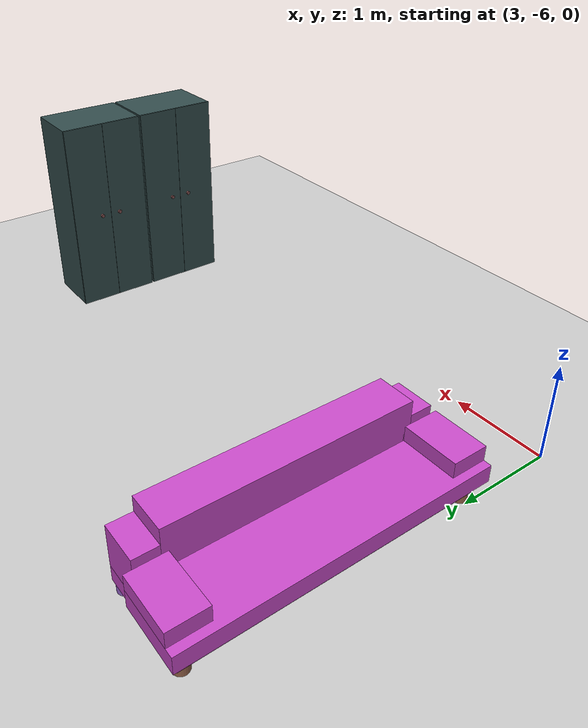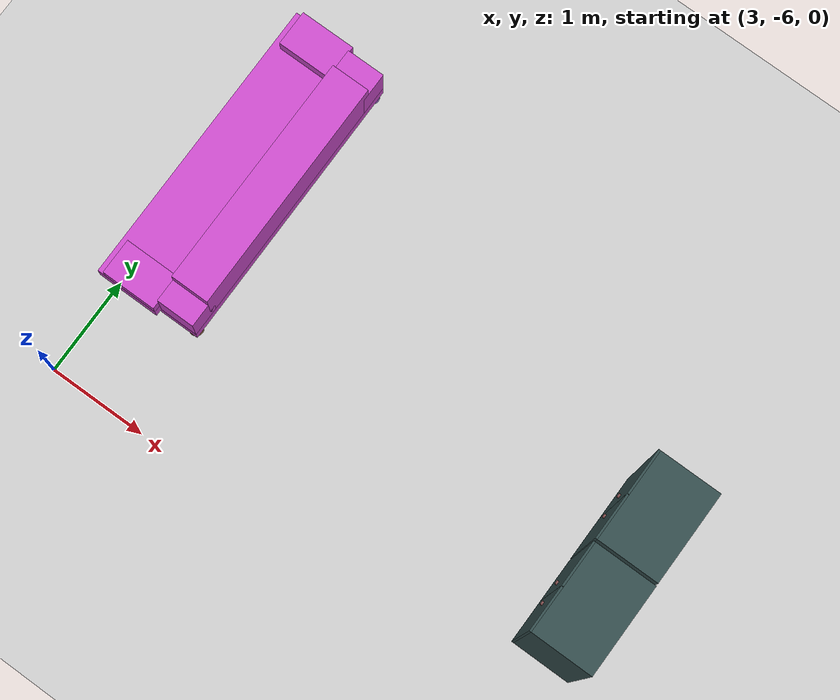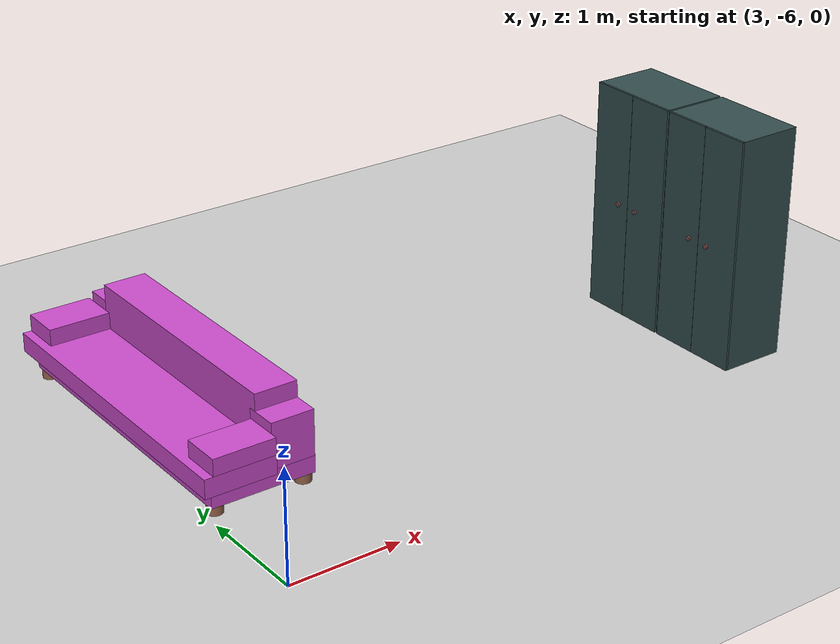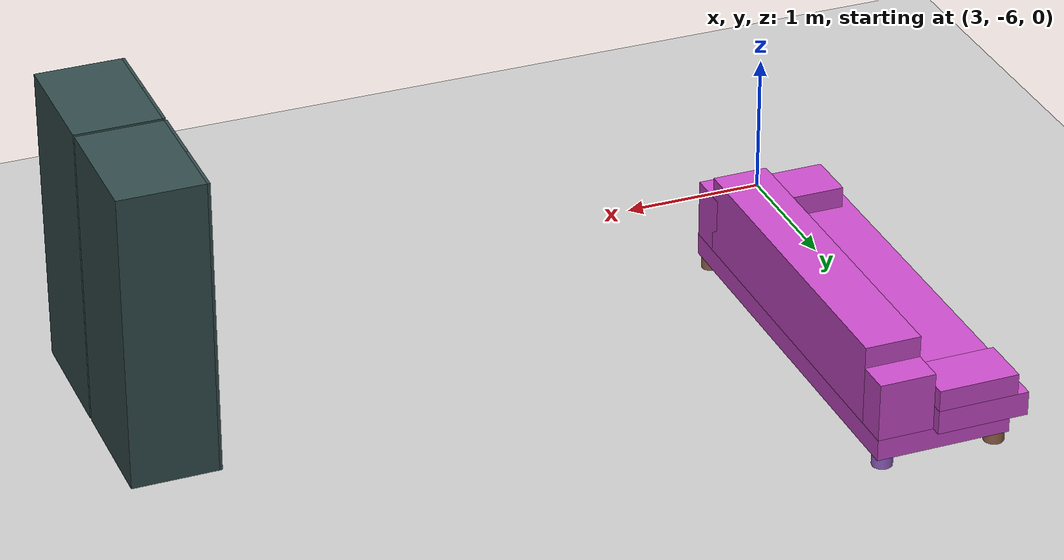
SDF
<sdf version="1.6">
 <world name="default">
  <model name="ground_plane">
   <static>1</static>
   <link name="link">
    <collision name="collision">
     <geometry><plane><normal>0 0 1</normal><size>100 100</size></plane></geometry>
     <surface><friction><ode><mu>100</mu><mu2>50</mu2></ode></friction></surface>
    </collision>
    <visual name="visual">
     <cast_shadows>0</cast_shadows>
     <geometry><plane><normal>0 0 1</normal><size>100 100</size></plane></geometry>
     <material>
      <script><uri>file://media/materials/scripts/gazebo.material</uri><name>Gazebo/Grey</name></script>
     </material>
    </visual>
   </link>
  </model>
  <model name="closet12_2">
   <link name="link_4">
    <pose>0.1575 -0.07957 1.24924 0 -0 0</pose>
    <visual name="visual">
     <geometry><box><size>0.59 0.882 2.1</size></box></geometry>
     <material>
      <lighting>1</lighting>
      <script><uri>file://media/materials/scripts/gazebo.material</uri><name>Gazebo/Grey</name></script>
      <ambient>0.2 0.3 0.3 1</ambient>
      <diffuse>0.7 0.7 0.7 1</diffuse>
      <specular>1 0.01 0.01 1</specular>
      <emissive>0 0 0 1</emissive>
      <shader type="vertex"><normal_map>__default__</normal_map></shader>
     </material>
    </visual>
    <collision name="collision">
     <geometry><box><size>0.59 0.882 2.1</size></box></geometry>
     <surface>
      <friction>
       <ode><mu>1</mu><mu2>1</mu2><fdir1>0 0 0</fdir1><slip1>0</slip1><slip2>0</slip2></ode>
       <torsional>
        <coefficient>1</coefficient>
        <patch_radius>0</patch_radius>
        <surface_radius>0</surface_radius>
        <use_patch_radius>1</use_patch_radius>
        <ode><slip>0</slip></ode>
       </torsional>
      </friction>
      <bounce><restitution_coefficient>0</restitution_coefficient><threshold>1e+06</threshold></bounce>
      <contact>
       <collide_without_contact>0</collide_without_contact>
       <collide_without_contact_bitmask>1</collide_without_contact_bitmask>
       <collide_bitmask>1</collide_bitmask>
       <ode>
        <soft_cfm>0</soft_cfm>
        <soft_erp>0.2</soft_erp>
        <kp>1e+13</kp>
        <kd>1</kd>
        <max_vel>0.01</max_vel>
        <min_depth>0</min_depth>
       </ode>
       <bullet>
        <split_impulse>1</split_impulse>
        <split_impulse_penetration_threshold>-0.01</split_impulse_penetration_threshold>
        <soft_cfm>0</soft_cfm>
        <soft_erp>0.2</soft_erp>
        <kp>1e+13</kp>
        <kd>1</kd>
       </bullet>
      </contact>
     </surface>
    </collision>
    <inertial>
     <inertia><ixx>1</ixx><ixy>0</ixy><ixz>0</ixz><iyy>1</iyy><iyz>0</iyz><izz>1</izz></inertia>
     <mass>1</mass>
    </inertial>
   </link>
   <link name="link_4_clone">
    <pose>-0.1475 0.14143 1.24924 0 -0 0</pose>
    <visual name="visual">
     <geometry><box><size>0.02 0.44 2.1</size></box></geometry>
     <material>
      <lighting>1</lighting>
      <script><uri>file://media/materials/scripts/gazebo.material</uri><name>Gazebo/Grey</name></script>
      <ambient>0.2 0.3 0.3 1</ambient>
      <diffuse>0.7 0.7 0.7 1</diffuse>
      <specular>1 0.01 0.01 1</specular>
      <emissive>0 0 0 1</emissive>
      <shader type="vertex"><normal_map>__default__</normal_map></shader>
     </material>
    </visual>
    <collision name="collision">
     <geometry><box><size>0.02 0.44 2.1</size></box></geometry>
     <surface>
      <friction>
       <ode><mu>1</mu><mu2>1</mu2><fdir1>0 0 0</fdir1><slip1>0</slip1><slip2>0</slip2></ode>
       <torsional>
        <coefficient>1</coefficient>
        <patch_radius>0</patch_radius>
        <surface_radius>0</surface_radius>
        <use_patch_radius>1</use_patch_radius>
        <ode><slip>0</slip></ode>
       </torsional>
      </friction>
      <bounce><restitution_coefficient>0</restitution_coefficient><threshold>1e+06</threshold></bounce>
      <contact>
       <collide_without_contact>0</collide_without_contact>
       <collide_without_contact_bitmask>1</collide_without_contact_bitmask>
       <collide_bitmask>1</collide_bitmask>
       <ode>
        <soft_cfm>0</soft_cfm>
        <soft_erp>0.2</soft_erp>
        <kp>1e+13</kp>
        <kd>1</kd>
        <max_vel>0.01</max_vel>
        <min_depth>0</min_depth>
       </ode>
       <bullet>
        <split_impulse>1</split_impulse>
        <split_impulse_penetration_threshold>-0.01</split_impulse_penetration_threshold>
        <soft_cfm>0</soft_cfm>
        <soft_erp>0.2</soft_erp>
        <kp>1e+13</kp>
        <kd>1</kd>
       </bullet>
      </contact>
     </surface>
    </collision>
    <inertial>
     <inertia><ixx>1</ixx><ixy>0</ixy><ixz>0</ixz><iyy>1</iyy><iyz>0</iyz><izz>1</izz></inertia>
     <mass>1</mass>
    </inertial>
   </link>
   <link name="link_4_clone_clone">
    <pose>-0.1475 -0.30057 1.24924 0 -0 0</pose>
    <visual name="visual">
     <geometry><box><size>0.02 0.44 2.1</size></box></geometry>
     <material>
      <lighting>1</lighting>
      <script><uri>file://media/materials/scripts/gazebo.material</uri><name>Gazebo/Grey</name></script>
      <ambient>0.2 0.3 0.3 1</ambient>
      <diffuse>0.7 0.7 0.7 1</diffuse>
      <specular>1 0.01 0.01 1</specular>
      <emissive>0 0 0 1</emissive>
      <shader type="vertex"><normal_map>__default__</normal_map></shader>
     </material>
    </visual>
    <collision name="collision">
     <geometry><box><size>0.02 0.44 2.1</size></box></geometry>
     <surface>
      <friction>
       <ode><mu>1</mu><mu2>1</mu2><fdir1>0 0 0</fdir1><slip1>0</slip1><slip2>0</slip2></ode>
       <torsional>
        <coefficient>1</coefficient>
        <patch_radius>0</patch_radius>
        <surface_radius>0</surface_radius>
        <use_patch_radius>1</use_patch_radius>
        <ode><slip>0</slip></ode>
       </torsional>
      </friction>
      <bounce><restitution_coefficient>0</restitution_coefficient><threshold>1e+06</threshold></bounce>
      <contact>
       <collide_without_contact>0</collide_without_contact>
       <collide_without_contact_bitmask>1</collide_without_contact_bitmask>
       <collide_bitmask>1</collide_bitmask>
       <ode>
        <soft_cfm>0</soft_cfm>
        <soft_erp>0.2</soft_erp>
        <kp>1e+13</kp>
        <kd>1</kd>
        <max_vel>0.01</max_vel>
        <min_depth>0</min_depth>
       </ode>
       <bullet>
        <split_impulse>1</split_impulse>
        <split_impulse_penetration_threshold>-0.01</split_impulse_penetration_threshold>
        <soft_cfm>0</soft_cfm>
        <soft_erp>0.2</soft_erp>
        <kp>1e+13</kp>
        <kd>1</kd>
       </bullet>
      </contact>
     </surface>
    </collision>
    <inertial>
     <inertia><ixx>1</ixx><ixy>0</ixy><ixz>0</ixz><iyy>1</iyy><iyz>0</iyz><izz>1</izz></inertia>
     <mass>1</mass>
    </inertial>
   </link>
   <link name="link_6">
    <pose>-0.167502 0.0279 1.24924 0 1.5707 0</pose>
    <visual name="visual">
     <geometry><cylinder><radius>0.02</radius><length>0.02</length></cylinder></geometry>
     <material>
      <lighting>1</lighting>
      <script><uri>file://media/materials/scripts/gazebo.material</uri><name>Gazebo/Grey</name></script>
      <ambient>0.5 0.3 0.3 1</ambient>
      <diffuse>0.7 0.7 0.7 1</diffuse>
      <specular>0.01 0.01 0.01 1</specular>
      <emissive>0 0 0 1</emissive>
      <shader type="vertex"><normal_map>__default__</normal_map></shader>
     </material>
    </visual>
    <collision name="collision">
     <geometry><cylinder><radius>0.02</radius><length>0.02</length></cylinder></geometry>
     <surface>
      <friction>
       <ode><mu>1</mu><mu2>1</mu2><fdir1>0 0 0</fdir1><slip1>0</slip1><slip2>0</slip2></ode>
       <torsional>
        <coefficient>1</coefficient>
        <patch_radius>0</patch_radius>
        <surface_radius>0</surface_radius>
        <use_patch_radius>1</use_patch_radius>
        <ode><slip>0</slip></ode>
       </torsional>
      </friction>
      <bounce><restitution_coefficient>0</restitution_coefficient><threshold>1e+06</threshold></bounce>
      <contact>
       <collide_without_contact>0</collide_without_contact>
       <collide_without_contact_bitmask>1</collide_without_contact_bitmask>
       <collide_bitmask>1</collide_bitmask>
       <ode>
        <soft_cfm>0</soft_cfm>
        <soft_erp>0.2</soft_erp>
        <kp>1e+13</kp>
        <kd>1</kd>
        <max_vel>0.01</max_vel>
        <min_depth>0</min_depth>
       </ode>
       <bullet>
        <split_impulse>1</split_impulse>
        <split_impulse_penetration_threshold>-0.01</split_impulse_penetration_threshold>
        <soft_cfm>0</soft_cfm>
        <soft_erp>0.2</soft_erp>
        <kp>1e+13</kp>
        <kd>1</kd>
       </bullet>
      </contact>
     </surface>
    </collision>
    <inertial>
     <inertia><ixx>1</ixx><ixy>0</ixy><ixz>0</ixz><iyy>1</iyy><iyz>0</iyz><izz>1</izz></inertia>
     <mass>1</mass>
    </inertial>
   </link>
   <link name="link_6_clone">
    <pose>-0.167502 -0.184796 1.24924 0 1.5707 0</pose>
    <visual name="visual">
     <geometry><cylinder><radius>0.02</radius><length>0.02</length></cylinder></geometry>
     <material>
      <lighting>1</lighting>
      <script><uri>file://media/materials/scripts/gazebo.material</uri><name>Gazebo/Grey</name></script>
      <ambient>0.5 0.3 0.3 1</ambient>
      <diffuse>0.7 0.7 0.7 1</diffuse>
      <specular>0.01 0.01 0.01 1</specular>
      <emissive>0 0 0 1</emissive>
      <shader type="vertex"><normal_map>__default__</normal_map></shader>
     </material>
    </visual>
    <collision name="collision">
     <geometry><cylinder><radius>0.02</radius><length>0.02</length></cylinder></geometry>
     <surface>
      <friction>
       <ode><mu>1</mu><mu2>1</mu2><fdir1>0 0 0</fdir1><slip1>0</slip1><slip2>0</slip2></ode>
       <torsional>
        <coefficient>1</coefficient>
        <patch_radius>0</patch_radius>
        <surface_radius>0</surface_radius>
        <use_patch_radius>1</use_patch_radius>
        <ode><slip>0</slip></ode>
       </torsional>
      </friction>
      <bounce><restitution_coefficient>0</restitution_coefficient><threshold>1e+06</threshold></bounce>
      <contact>
       <collide_without_contact>0</collide_without_contact>
       <collide_without_contact_bitmask>1</collide_without_contact_bitmask>
       <collide_bitmask>1</collide_bitmask>
       <ode>
        <soft_cfm>0</soft_cfm>
        <soft_erp>0.2</soft_erp>
        <kp>1e+13</kp>
        <kd>1</kd>
        <max_vel>0.01</max_vel>
        <min_depth>0</min_depth>
       </ode>
       <bullet>
        <split_impulse>1</split_impulse>
        <split_impulse_penetration_threshold>-0.01</split_impulse_penetration_threshold>
        <soft_cfm>0</soft_cfm>
        <soft_erp>0.2</soft_erp>
        <kp>1e+13</kp>
        <kd>1</kd>
       </bullet>
      </contact>
     </surface>
    </collision>
    <inertial>
     <inertia><ixx>1</ixx><ixy>0</ixy><ixz>0</ixz><iyy>1</iyy><iyz>0</iyz><izz>1</izz></inertia>
     <mass>1</mass>
    </inertial>
   </link>
   <joint name="link_4_JOINT_0" type="fixed">
    <parent>link_4</parent>
    <child>link_4_clone_clone</child>
    <physics>
     <ode><limit><cfm>0</cfm><erp>0.2</erp></limit><suspension><cfm>0</cfm><erp>0.2</erp></suspension></ode>
    </physics>
   </joint>
   <joint name="link_4_JOINT_1" type="fixed">
    <parent>link_4</parent>
    <child>link_4_clone</child>
    <physics>
     <ode><limit><cfm>0</cfm><erp>0.2</erp></limit><suspension><cfm>0</cfm><erp>0.2</erp></suspension></ode>
    </physics>
   </joint>
   <joint name="link_4_clone_JOINT_2" type="fixed">
    <parent>link_4_clone</parent>
    <child>link_6</child>
    <physics>
     <ode><limit><cfm>0</cfm><erp>0.2</erp></limit><suspension><cfm>0</cfm><erp>0.2</erp></suspension></ode>
    </physics>
   </joint>
   <joint name="link_4_clone_clone_JOINT_3" type="fixed">
    <parent>link_4_clone_clone</parent>
    <child>link_6_clone</child>
    <physics>
     <ode><limit><cfm>0</cfm><erp>0.2</erp></limit><suspension><cfm>0</cfm><erp>0.2</erp></suspension></ode>
    </physics>
   </joint>
   <joint name="link_4_clone_clone_JOINT_4" type="fixed">
    <parent>link_4_clone_clone</parent>
    <child>link_6_clone</child>
    <physics>
     <ode><limit><cfm>0</cfm><erp>0.2</erp></limit><suspension><cfm>0</cfm><erp>0.2</erp></suspension></ode>
    </physics>
   </joint>
   <static>0</static>
   <pose>7.92782 -5.01709 -0.119242 -0 -1.3e-05 -0.000121</pose>
  </model>
  <model name="closet12_2_clone">
   <link name="link_4">
    <pose>0.1575 -0.07957 1.24924 0 -0 0</pose>
    <visual name="visual">
     <geometry><box><size>0.59 0.882 2.1</size></box></geometry>
     <material>
      <lighting>1</lighting>
      <script><uri>file://media/materials/scripts/gazebo.material</uri><name>Gazebo/Grey</name></script>
      <ambient>0.2 0.3 0.3 1</ambient>
      <diffuse>0.7 0.7 0.7 1</diffuse>
      <specular>1 0.01 0.01 1</specular>
      <emissive>0 0 0 1</emissive>
      <shader type="vertex"><normal_map>__default__</normal_map></shader>
     </material>
    </visual>
    <collision name="collision">
     <geometry><box><size>0.59 0.882 2.1</size></box></geometry>
     <surface>
      <friction>
       <ode><mu>1</mu><mu2>1</mu2><fdir1>0 0 0</fdir1><slip1>0</slip1><slip2>0</slip2></ode>
       <torsional>
        <coefficient>1</coefficient>
        <patch_radius>0</patch_radius>
        <surface_radius>0</surface_radius>
        <use_patch_radius>1</use_patch_radius>
        <ode><slip>0</slip></ode>
       </torsional>
      </friction>
      <bounce><restitution_coefficient>0</restitution_coefficient><threshold>1e+06</threshold></bounce>
      <contact>
       <collide_without_contact>0</collide_without_contact>
       <collide_without_contact_bitmask>1</collide_without_contact_bitmask>
       <collide_bitmask>1</collide_bitmask>
       <ode>
        <soft_cfm>0</soft_cfm>
        <soft_erp>0.2</soft_erp>
        <kp>1e+13</kp>
        <kd>1</kd>
        <max_vel>0.01</max_vel>
        <min_depth>0</min_depth>
       </ode>
       <bullet>
        <split_impulse>1</split_impulse>
        <split_impulse_penetration_threshold>-0.01</split_impulse_penetration_threshold>
        <soft_cfm>0</soft_cfm>
        <soft_erp>0.2</soft_erp>
        <kp>1e+13</kp>
        <kd>1</kd>
       </bullet>
      </contact>
     </surface>
    </collision>
    <inertial>
     <inertia><ixx>1</ixx><ixy>0</ixy><ixz>0</ixz><iyy>1</iyy><iyz>0</iyz><izz>1</izz></inertia>
     <mass>1</mass>
    </inertial>
   </link>
   <link name="link_4_clone">
    <pose>-0.1475 0.14143 1.24924 0 -0 0</pose>
    <visual name="visual">
     <geometry><box><size>0.02 0.44 2.1</size></box></geometry>
     <material>
      <lighting>1</lighting>
      <script><uri>file://media/materials/scripts/gazebo.material</uri><name>Gazebo/Grey</name></script>
      <ambient>0.2 0.3 0.3 1</ambient>
      <diffuse>0.7 0.7 0.7 1</diffuse>
      <specular>1 0.01 0.01 1</specular>
      <emissive>0 0 0 1</emissive>
      <shader type="vertex"><normal_map>__default__</normal_map></shader>
     </material>
    </visual>
    <collision name="collision">
     <geometry><box><size>0.02 0.44 2.1</size></box></geometry>
     <surface>
      <friction>
       <ode><mu>1</mu><mu2>1</mu2><fdir1>0 0 0</fdir1><slip1>0</slip1><slip2>0</slip2></ode>
       <torsional>
        <coefficient>1</coefficient>
        <patch_radius>0</patch_radius>
        <surface_radius>0</surface_radius>
        <use_patch_radius>1</use_patch_radius>
        <ode><slip>0</slip></ode>
       </torsional>
      </friction>
      <bounce><restitution_coefficient>0</restitution_coefficient><threshold>1e+06</threshold></bounce>
      <contact>
       <collide_without_contact>0</collide_without_contact>
       <collide_without_contact_bitmask>1</collide_without_contact_bitmask>
       <collide_bitmask>1</collide_bitmask>
       <ode>
        <soft_cfm>0</soft_cfm>
        <soft_erp>0.2</soft_erp>
        <kp>1e+13</kp>
        <kd>1</kd>
        <max_vel>0.01</max_vel>
        <min_depth>0</min_depth>
       </ode>
       <bullet>
        <split_impulse>1</split_impulse>
        <split_impulse_penetration_threshold>-0.01</split_impulse_penetration_threshold>
        <soft_cfm>0</soft_cfm>
        <soft_erp>0.2</soft_erp>
        <kp>1e+13</kp>
        <kd>1</kd>
       </bullet>
      </contact>
     </surface>
    </collision>
    <inertial>
     <inertia><ixx>1</ixx><ixy>0</ixy><ixz>0</ixz><iyy>1</iyy><iyz>0</iyz><izz>1</izz></inertia>
     <mass>1</mass>
    </inertial>
   </link>
   <link name="link_4_clone_clone">
    <pose>-0.1475 -0.30057 1.24924 0 -0 0</pose>
    <visual name="visual">
     <geometry><box><size>0.02 0.44 2.1</size></box></geometry>
     <material>
      <lighting>1</lighting>
      <script><uri>file://media/materials/scripts/gazebo.material</uri><name>Gazebo/Grey</name></script>
      <ambient>0.2 0.3 0.3 1</ambient>
      <diffuse>0.7 0.7 0.7 1</diffuse>
      <specular>1 0.01 0.01 1</specular>
      <emissive>0 0 0 1</emissive>
      <shader type="vertex"><normal_map>__default__</normal_map></shader>
     </material>
    </visual>
    <collision name="collision">
     <geometry><box><size>0.02 0.44 2.1</size></box></geometry>
     <surface>
      <friction>
       <ode><mu>1</mu><mu2>1</mu2><fdir1>0 0 0</fdir1><slip1>0</slip1><slip2>0</slip2></ode>
       <torsional>
        <coefficient>1</coefficient>
        <patch_radius>0</patch_radius>
        <surface_radius>0</surface_radius>
        <use_patch_radius>1</use_patch_radius>
        <ode><slip>0</slip></ode>
       </torsional>
      </friction>
      <bounce><restitution_coefficient>0</restitution_coefficient><threshold>1e+06</threshold></bounce>
      <contact>
       <collide_without_contact>0</collide_without_contact>
       <collide_without_contact_bitmask>1</collide_without_contact_bitmask>
       <collide_bitmask>1</collide_bitmask>
       <ode>
        <soft_cfm>0</soft_cfm>
        <soft_erp>0.2</soft_erp>
        <kp>1e+13</kp>
        <kd>1</kd>
        <max_vel>0.01</max_vel>
        <min_depth>0</min_depth>
       </ode>
       <bullet>
        <split_impulse>1</split_impulse>
        <split_impulse_penetration_threshold>-0.01</split_impulse_penetration_threshold>
        <soft_cfm>0</soft_cfm>
        <soft_erp>0.2</soft_erp>
        <kp>1e+13</kp>
        <kd>1</kd>
       </bullet>
      </contact>
     </surface>
    </collision>
    <inertial>
     <inertia><ixx>1</ixx><ixy>0</ixy><ixz>0</ixz><iyy>1</iyy><iyz>0</iyz><izz>1</izz></inertia>
     <mass>1</mass>
    </inertial>
   </link>
   <link name="link_6">
    <pose>-0.167502 0.0279 1.24924 0 1.5707 0</pose>
    <visual name="visual">
     <geometry><cylinder><radius>0.02</radius><length>0.02</length></cylinder></geometry>
     <material>
      <lighting>1</lighting>
      <script><uri>file://media/materials/scripts/gazebo.material</uri><name>Gazebo/Grey</name></script>
      <ambient>0.5 0.3 0.3 1</ambient>
      <diffuse>0.7 0.7 0.7 1</diffuse>
      <specular>0.01 0.01 0.01 1</specular>
      <emissive>0 0 0 1</emissive>
      <shader type="vertex"><normal_map>__default__</normal_map></shader>
     </material>
    </visual>
    <collision name="collision">
     <geometry><cylinder><radius>0.02</radius><length>0.02</length></cylinder></geometry>
     <surface>
      <friction>
       <ode><mu>1</mu><mu2>1</mu2><fdir1>0 0 0</fdir1><slip1>0</slip1><slip2>0</slip2></ode>
       <torsional>
        <coefficient>1</coefficient>
        <patch_radius>0</patch_radius>
        <surface_radius>0</surface_radius>
        <use_patch_radius>1</use_patch_radius>
        <ode><slip>0</slip></ode>
       </torsional>
      </friction>
      <bounce><restitution_coefficient>0</restitution_coefficient><threshold>1e+06</threshold></bounce>
      <contact>
       <collide_without_contact>0</collide_without_contact>
       <collide_without_contact_bitmask>1</collide_without_contact_bitmask>
       <collide_bitmask>1</collide_bitmask>
       <ode>
        <soft_cfm>0</soft_cfm>
        <soft_erp>0.2</soft_erp>
        <kp>1e+13</kp>
        <kd>1</kd>
        <max_vel>0.01</max_vel>
        <min_depth>0</min_depth>
       </ode>
       <bullet>
        <split_impulse>1</split_impulse>
        <split_impulse_penetration_threshold>-0.01</split_impulse_penetration_threshold>
        <soft_cfm>0</soft_cfm>
        <soft_erp>0.2</soft_erp>
        <kp>1e+13</kp>
        <kd>1</kd>
       </bullet>
      </contact>
     </surface>
    </collision>
    <inertial>
     <inertia><ixx>1</ixx><ixy>0</ixy><ixz>0</ixz><iyy>1</iyy><iyz>0</iyz><izz>1</izz></inertia>
     <mass>1</mass>
    </inertial>
   </link>
   <link name="link_6_clone">
    <pose>-0.167502 -0.184796 1.24924 0 1.5707 0</pose>
    <visual name="visual">
     <geometry><cylinder><radius>0.02</radius><length>0.02</length></cylinder></geometry>
     <material>
      <lighting>1</lighting>
      <script><uri>file://media/materials/scripts/gazebo.material</uri><name>Gazebo/Grey</name></script>
      <ambient>0.5 0.3 0.3 1</ambient>
      <diffuse>0.7 0.7 0.7 1</diffuse>
      <specular>0.01 0.01 0.01 1</specular>
      <emissive>0 0 0 1</emissive>
      <shader type="vertex"><normal_map>__default__</normal_map></shader>
     </material>
    </visual>
    <collision name="collision">
     <geometry><cylinder><radius>0.02</radius><length>0.02</length></cylinder></geometry>
     <surface>
      <friction>
       <ode><mu>1</mu><mu2>1</mu2><fdir1>0 0 0</fdir1><slip1>0</slip1><slip2>0</slip2></ode>
       <torsional>
        <coefficient>1</coefficient>
        <patch_radius>0</patch_radius>
        <surface_radius>0</surface_radius>
        <use_patch_radius>1</use_patch_radius>
        <ode><slip>0</slip></ode>
       </torsional>
      </friction>
      <bounce><restitution_coefficient>0</restitution_coefficient><threshold>1e+06</threshold></bounce>
      <contact>
       <collide_without_contact>0</collide_without_contact>
       <collide_without_contact_bitmask>1</collide_without_contact_bitmask>
       <collide_bitmask>1</collide_bitmask>
       <ode>
        <soft_cfm>0</soft_cfm>
        <soft_erp>0.2</soft_erp>
        <kp>1e+13</kp>
        <kd>1</kd>
        <max_vel>0.01</max_vel>
        <min_depth>0</min_depth>
       </ode>
       <bullet>
        <split_impulse>1</split_impulse>
        <split_impulse_penetration_threshold>-0.01</split_impulse_penetration_threshold>
        <soft_cfm>0</soft_cfm>
        <soft_erp>0.2</soft_erp>
        <kp>1e+13</kp>
        <kd>1</kd>
       </bullet>
      </contact>
     </surface>
    </collision>
    <inertial>
     <inertia><ixx>1</ixx><ixy>0</ixy><ixz>0</ixz><iyy>1</iyy><iyz>0</iyz><izz>1</izz></inertia>
     <mass>1</mass>
    </inertial>
   </link>
   <joint name="link_4_JOINT_0" type="fixed">
    <parent>link_4</parent>
    <child>link_4_clone_clone</child>
    <physics>
     <ode><limit><cfm>0</cfm><erp>0.2</erp></limit><suspension><cfm>0</cfm><erp>0.2</erp></suspension></ode>
    </physics>
   </joint>
   <joint name="link_4_JOINT_1" type="fixed">
    <parent>link_4</parent>
    <child>link_4_clone</child>
    <physics>
     <ode><limit><cfm>0</cfm><erp>0.2</erp></limit><suspension><cfm>0</cfm><erp>0.2</erp></suspension></ode>
    </physics>
   </joint>
   <joint name="link_4_clone_JOINT_2" type="fixed">
    <parent>link_4_clone</parent>
    <child>link_6</child>
    <physics>
     <ode><limit><cfm>0</cfm><erp>0.2</erp></limit><suspension><cfm>0</cfm><erp>0.2</erp></suspension></ode>
    </physics>
   </joint>
   <joint name="link_4_clone_clone_JOINT_3" type="fixed">
    <parent>link_4_clone_clone</parent>
    <child>link_6_clone</child>
    <physics>
     <ode><limit><cfm>0</cfm><erp>0.2</erp></limit><suspension><cfm>0</cfm><erp>0.2</erp></suspension></ode>
    </physics>
   </joint>
   <joint name="link_4_clone_clone_JOINT_4" type="fixed">
    <parent>link_4_clone_clone</parent>
    <child>link_6_clone</child>
    <physics>
     <ode><limit><cfm>0</cfm><erp>0.2</erp></limit><suspension><cfm>0</cfm><erp>0.2</erp></suspension></ode>
    </physics>
   </joint>
   <static>0</static>
   <pose>7.92654 -4.11052 -0.11924 1e-06 -0 -3.4e-05</pose>
  </model>
  <model name="sofa">
   <link name="link_1">
    <pose>-0 -0.016818 -0.114091 0 -0 0</pose>
    <visual name="visual">
     <geometry><box><size>2.84 0.94 0.15</size></box></geometry>
     <material>
      <lighting>1</lighting>
      <script><uri>file://media/materials/scripts/gazebo.material</uri><name>Gazebo/Grey</name></script>
      <ambient>0.8 0.3 0.8 1</ambient>
      <diffuse>0.7 0.7 0.7 1</diffuse>
      <specular>0.01 0.01 0.01 1</specular>
      <emissive>0 0 0 1</emissive>
      <shader type="vertex"><normal_map>__default__</normal_map></shader>
     </material>
    </visual>
    <collision name="collision">
     <geometry><box><size>2.84 0.94 0.15</size></box></geometry>
     <surface>
      <friction>
       <ode><mu>1</mu><mu2>1</mu2><fdir1>0 0 0</fdir1><slip1>0</slip1><slip2>0</slip2></ode>
       <torsional>
        <coefficient>1</coefficient>
        <patch_radius>0</patch_radius>
        <surface_radius>0</surface_radius>
        <use_patch_radius>1</use_patch_radius>
        <ode><slip>0</slip></ode>
       </torsional>
      </friction>
      <bounce><restitution_coefficient>0</restitution_coefficient><threshold>1e+06</threshold></bounce>
      <contact>
       <collide_without_contact>0</collide_without_contact>
       <collide_without_contact_bitmask>1</collide_without_contact_bitmask>
       <collide_bitmask>1</collide_bitmask>
       <ode>
        <soft_cfm>0</soft_cfm>
        <soft_erp>0.2</soft_erp>
        <kp>1e+13</kp>
        <kd>1</kd>
        <max_vel>0.01</max_vel>
        <min_depth>0</min_depth>
       </ode>
       <bullet>
        <split_impulse>1</split_impulse>
        <split_impulse_penetration_threshold>-0.01</split_impulse_penetration_threshold>
        <soft_cfm>0</soft_cfm>
        <soft_erp>0.2</soft_erp>
        <kp>1e+13</kp>
        <kd>1</kd>
       </bullet>
      </contact>
     </surface>
    </collision>
    <inertial>
     <inertia><ixx>1</ixx><ixy>0</ixy><ixz>0</ixz><iyy>1</iyy><iyz>0</iyz><izz>1</izz></inertia>
     <mass>1</mass>
    </inertial>
   </link>
   <link name="link_1_clone">
    <pose>-0 -0.256819 0.045909 0 -0 0</pose>
    <visual name="visual">
     <geometry><box><size>2.98 0.64 0.17</size></box></geometry>
     <material>
      <lighting>1</lighting>
      <script><uri>file://media/materials/scripts/gazebo.material</uri><name>Gazebo/Grey</name></script>
      <ambient>0.8 0.3 0.8 1</ambient>
      <diffuse>0.7 0.7 0.7 1</diffuse>
      <specular>0.01 0.01 0.01 1</specular>
      <emissive>0 0 0 1</emissive>
      <shader type="vertex"><normal_map>__default__</normal_map></shader>
     </material>
    </visual>
    <collision name="collision">
     <geometry><box><size>2.98 0.64 0.17</size></box></geometry>
     <surface>
      <friction>
       <ode><mu>1</mu><mu2>1</mu2><fdir1>0 0 0</fdir1><slip1>0</slip1><slip2>0</slip2></ode>
       <torsional>
        <coefficient>1</coefficient>
        <patch_radius>0</patch_radius>
        <surface_radius>0</surface_radius>
        <use_patch_radius>1</use_patch_radius>
        <ode><slip>0</slip></ode>
       </torsional>
      </friction>
      <bounce><restitution_coefficient>0</restitution_coefficient><threshold>1e+06</threshold></bounce>
      <contact>
       <collide_without_contact>0</collide_without_contact>
       <collide_without_contact_bitmask>1</collide_without_contact_bitmask>
       <collide_bitmask>1</collide_bitmask>
       <ode>
        <soft_cfm>0</soft_cfm>
        <soft_erp>0.2</soft_erp>
        <kp>1e+13</kp>
        <kd>1</kd>
        <max_vel>0.01</max_vel>
        <min_depth>0</min_depth>
       </ode>
       <bullet>
        <split_impulse>1</split_impulse>
        <split_impulse_penetration_threshold>-0.01</split_impulse_penetration_threshold>
        <soft_cfm>0</soft_cfm>
        <soft_erp>0.2</soft_erp>
        <kp>1e+13</kp>
        <kd>1</kd>
       </bullet>
      </contact>
     </surface>
    </collision>
    <inertial>
     <inertia><ixx>1</ixx><ixy>0</ixy><ixz>0</ixz><iyy>1</iyy><iyz>0</iyz><izz>1</izz></inertia>
     <mass>1</mass>
    </inertial>
   </link>
   <link name="link_1_clone_clone">
    <pose>1.27 0.258181 0.165909 0 -0 0</pose>
    <visual name="visual">
     <geometry><box><size>0.3 0.39 0.41</size></box></geometry>
     <material>
      <lighting>1</lighting>
      <script><uri>file://media/materials/scripts/gazebo.material</uri><name>Gazebo/Grey</name></script>
      <ambient>0.8 0.3 0.8 1</ambient>
      <diffuse>0.7 0.7 0.7 1</diffuse>
      <specular>0.01 0.01 0.01 1</specular>
      <emissive>0 0 0 1</emissive>
      <shader type="vertex"><normal_map>__default__</normal_map></shader>
     </material>
    </visual>
    <collision name="collision">
     <geometry><box><size>0.3 0.39 0.41</size></box></geometry>
     <surface>
      <friction>
       <ode><mu>1</mu><mu2>1</mu2><fdir1>0 0 0</fdir1><slip1>0</slip1><slip2>0</slip2></ode>
       <torsional>
        <coefficient>1</coefficient>
        <patch_radius>0</patch_radius>
        <surface_radius>0</surface_radius>
        <use_patch_radius>1</use_patch_radius>
        <ode><slip>0</slip></ode>
       </torsional>
      </friction>
      <bounce><restitution_coefficient>0</restitution_coefficient><threshold>1e+06</threshold></bounce>
      <contact>
       <collide_without_contact>0</collide_without_contact>
       <collide_without_contact_bitmask>1</collide_without_contact_bitmask>
       <collide_bitmask>1</collide_bitmask>
       <ode>
        <soft_cfm>0</soft_cfm>
        <soft_erp>0.2</soft_erp>
        <kp>1e+13</kp>
        <kd>1</kd>
        <max_vel>0.01</max_vel>
        <min_depth>0</min_depth>
       </ode>
       <bullet>
        <split_impulse>1</split_impulse>
        <split_impulse_penetration_threshold>-0.01</split_impulse_penetration_threshold>
        <soft_cfm>0</soft_cfm>
        <soft_erp>0.2</soft_erp>
        <kp>1e+13</kp>
        <kd>1</kd>
       </bullet>
      </contact>
     </surface>
    </collision>
    <inertial>
     <inertia><ixx>1</ixx><ixy>0</ixy><ixz>0</ixz><iyy>1</iyy><iyz>0</iyz><izz>1</izz></inertia>
     <mass>1</mass>
    </inertial>
   </link>
   <link name="link_1_clone_clone_0">
    <pose>-0 0.258181 0.240909 0 -0 0</pose>
    <visual name="visual">
     <geometry><box><size>2.38 0.39 0.56</size></box></geometry>
     <material>
      <lighting>1</lighting>
      <script><uri>file://media/materials/scripts/gazebo.material</uri><name>Gazebo/Grey</name></script>
      <ambient>0.8 0.3 0.8 1</ambient>
      <diffuse>0.7 0.7 0.7 1</diffuse>
      <specular>0.01 0.01 0.01 1</specular>
      <emissive>0 0 0 1</emissive>
      <shader type="vertex"><normal_map>__default__</normal_map></shader>
     </material>
    </visual>
    <collision name="collision">
     <geometry><box><size>2.38 0.39 0.56</size></box></geometry>
     <surface>
      <friction>
       <ode><mu>1</mu><mu2>1</mu2><fdir1>0 0 0</fdir1><slip1>0</slip1><slip2>0</slip2></ode>
       <torsional>
        <coefficient>1</coefficient>
        <patch_radius>0</patch_radius>
        <surface_radius>0</surface_radius>
        <use_patch_radius>1</use_patch_radius>
        <ode><slip>0</slip></ode>
       </torsional>
      </friction>
      <bounce><restitution_coefficient>0</restitution_coefficient><threshold>1e+06</threshold></bounce>
      <contact>
       <collide_without_contact>0</collide_without_contact>
       <collide_without_contact_bitmask>1</collide_without_contact_bitmask>
       <collide_bitmask>1</collide_bitmask>
       <ode>
        <soft_cfm>0</soft_cfm>
        <soft_erp>0.2</soft_erp>
        <kp>1e+13</kp>
        <kd>1</kd>
        <max_vel>0.01</max_vel>
        <min_depth>0</min_depth>
       </ode>
       <bullet>
        <split_impulse>1</split_impulse>
        <split_impulse_penetration_threshold>-0.01</split_impulse_penetration_threshold>
        <soft_cfm>0</soft_cfm>
        <soft_erp>0.2</soft_erp>
        <kp>1e+13</kp>
        <kd>1</kd>
       </bullet>
      </contact>
     </surface>
    </collision>
    <inertial>
     <inertia><ixx>1</ixx><ixy>0</ixy><ixz>0</ixz><iyy>1</iyy><iyz>0</iyz><izz>1</izz></inertia>
     <mass>1</mass>
    </inertial>
   </link>
   <link name="link_1_clone_clone_clone">
    <pose>-1.27 0.258181 0.165909 0 -0 0</pose>
    <visual name="visual">
     <geometry><box><size>0.3 0.39 0.41</size></box></geometry>
     <material>
      <lighting>1</lighting>
      <script><uri>file://media/materials/scripts/gazebo.material</uri><name>Gazebo/Grey</name></script>
      <ambient>0.8 0.3 0.8 1</ambient>
      <diffuse>0.7 0.7 0.7 1</diffuse>
      <specular>0.01 0.01 0.01 1</specular>
      <emissive>0 0 0 1</emissive>
      <shader type="vertex"><normal_map>__default__</normal_map></shader>
     </material>
    </visual>
    <collision name="collision">
     <geometry><box><size>0.3 0.39 0.41</size></box></geometry>
     <surface>
      <friction>
       <ode><mu>1</mu><mu2>1</mu2><fdir1>0 0 0</fdir1><slip1>0</slip1><slip2>0</slip2></ode>
       <torsional>
        <coefficient>1</coefficient>
        <patch_radius>0</patch_radius>
        <surface_radius>0</surface_radius>
        <use_patch_radius>1</use_patch_radius>
        <ode><slip>0</slip></ode>
       </torsional>
      </friction>
      <bounce><restitution_coefficient>0</restitution_coefficient><threshold>1e+06</threshold></bounce>
      <contact>
       <collide_without_contact>0</collide_without_contact>
       <collide_without_contact_bitmask>1</collide_without_contact_bitmask>
       <collide_bitmask>1</collide_bitmask>
       <ode>
        <soft_cfm>0</soft_cfm>
        <soft_erp>0.2</soft_erp>
        <kp>1e+13</kp>
        <kd>1</kd>
        <max_vel>0.01</max_vel>
        <min_depth>0</min_depth>
       </ode>
       <bullet>
        <split_impulse>1</split_impulse>
        <split_impulse_penetration_threshold>-0.01</split_impulse_penetration_threshold>
        <soft_cfm>0</soft_cfm>
        <soft_erp>0.2</soft_erp>
        <kp>1e+13</kp>
        <kd>1</kd>
       </bullet>
      </contact>
     </surface>
    </collision>
    <inertial>
     <inertia><ixx>1</ixx><ixy>0</ixy><ixz>0</ixz><iyy>1</iyy><iyz>0</iyz><izz>1</izz></inertia>
     <mass>1</mass>
    </inertial>
   </link>
   <link name="link_1_clone_clone_clone_0">
    <pose>1.31 -0.216819 0.205909 0 -0 0</pose>
    <visual name="visual">
     <geometry><box><size>0.36 0.56 0.15</size></box></geometry>
     <material>
      <lighting>1</lighting>
      <script><uri>file://media/materials/scripts/gazebo.material</uri><name>Gazebo/Grey</name></script>
      <ambient>0.8 0.3 0.8 1</ambient>
      <diffuse>0.7 0.7 0.7 1</diffuse>
      <specular>0.01 0.01 0.01 1</specular>
      <emissive>0 0 0 1</emissive>
      <shader type="vertex"><normal_map>__default__</normal_map></shader>
     </material>
    </visual>
    <collision name="collision">
     <geometry><box><size>0.36 0.56 0.15</size></box></geometry>
     <surface>
      <friction>
       <ode><mu>1</mu><mu2>1</mu2><fdir1>0 0 0</fdir1><slip1>0</slip1><slip2>0</slip2></ode>
       <torsional>
        <coefficient>1</coefficient>
        <patch_radius>0</patch_radius>
        <surface_radius>0</surface_radius>
        <use_patch_radius>1</use_patch_radius>
        <ode><slip>0</slip></ode>
       </torsional>
      </friction>
      <bounce><restitution_coefficient>0</restitution_coefficient><threshold>1e+06</threshold></bounce>
      <contact>
       <collide_without_contact>0</collide_without_contact>
       <collide_without_contact_bitmask>1</collide_without_contact_bitmask>
       <collide_bitmask>1</collide_bitmask>
       <ode>
        <soft_cfm>0</soft_cfm>
        <soft_erp>0.2</soft_erp>
        <kp>1e+13</kp>
        <kd>1</kd>
        <max_vel>0.01</max_vel>
        <min_depth>0</min_depth>
       </ode>
       <bullet>
        <split_impulse>1</split_impulse>
        <split_impulse_penetration_threshold>-0.01</split_impulse_penetration_threshold>
        <soft_cfm>0</soft_cfm>
        <soft_erp>0.2</soft_erp>
        <kp>1e+13</kp>
        <kd>1</kd>
       </bullet>
      </contact>
     </surface>
    </collision>
    <inertial>
     <inertia><ixx>1</ixx><ixy>0</ixy><ixz>0</ixz><iyy>1</iyy><iyz>0</iyz><izz>1</izz></inertia>
     <mass>1</mass>
    </inertial>
   </link>
   <link name="link_1_clone_clone_clone_0_clone">
    <pose>-1.31 -0.216819 0.205909 0 -0 0</pose>
    <visual name="visual">
     <geometry><box><size>0.36 0.56 0.15</size></box></geometry>
     <material>
      <lighting>1</lighting>
      <script><uri>file://media/materials/scripts/gazebo.material</uri><name>Gazebo/Grey</name></script>
      <ambient>0.8 0.3 0.8 1</ambient>
      <diffuse>0.7 0.7 0.7 1</diffuse>
      <specular>0.01 0.01 0.01 1</specular>
      <emissive>0 0 0 1</emissive>
      <shader type="vertex"><normal_map>__default__</normal_map></shader>
     </material>
    </visual>
    <collision name="collision">
     <geometry><box><size>0.36 0.56 0.15</size></box></geometry>
     <surface>
      <friction>
       <ode><mu>1</mu><mu2>1</mu2><fdir1>0 0 0</fdir1><slip1>0</slip1><slip2>0</slip2></ode>
       <torsional>
        <coefficient>1</coefficient>
        <patch_radius>0</patch_radius>
        <surface_radius>0</surface_radius>
        <use_patch_radius>1</use_patch_radius>
        <ode><slip>0</slip></ode>
       </torsional>
      </friction>
      <bounce><restitution_coefficient>0</restitution_coefficient><threshold>1e+06</threshold></bounce>
      <contact>
       <collide_without_contact>0</collide_without_contact>
       <collide_without_contact_bitmask>1</collide_without_contact_bitmask>
       <collide_bitmask>1</collide_bitmask>
       <ode>
        <soft_cfm>0</soft_cfm>
        <soft_erp>0.2</soft_erp>
        <kp>1e+13</kp>
        <kd>1</kd>
        <max_vel>0.01</max_vel>
        <min_depth>0</min_depth>
       </ode>
       <bullet>
        <split_impulse>1</split_impulse>
        <split_impulse_penetration_threshold>-0.01</split_impulse_penetration_threshold>
        <soft_cfm>0</soft_cfm>
        <soft_erp>0.2</soft_erp>
        <kp>1e+13</kp>
        <kd>1</kd>
       </bullet>
      </contact>
     </surface>
    </collision>
    <inertial>
     <inertia><ixx>1</ixx><ixy>0</ixy><ixz>0</ixz><iyy>1</iyy><iyz>0</iyz><izz>1</izz></inertia>
     <mass>1</mass>
    </inertial>
   </link>
   <link name="link_2">
    <pose>-1.35 0.383181 -0.229091 0 -0 0</pose>
    <visual name="visual">
     <geometry><cylinder><radius>0.07</radius><length>0.08</length></cylinder></geometry>
     <material>
      <lighting>1</lighting>
      <script><uri>file://media/materials/scripts/gazebo.material</uri><name>Gazebo/Grey</name></script>
      <ambient>0.6 0.4 0.8 1</ambient>
      <diffuse>0 0 0 1</diffuse>
      <specular>0.01 0.01 0.01 1</specular>
      <emissive>0 0 0 1</emissive>
      <shader type="vertex"><normal_map>__default__</normal_map></shader>
     </material>
    </visual>
    <collision name="collision">
     <geometry><cylinder><radius>0.07</radius><length>0.08</length></cylinder></geometry>
     <surface>
      <friction>
       <ode><mu>1</mu><mu2>1</mu2><fdir1>0 0 0</fdir1><slip1>0</slip1><slip2>0</slip2></ode>
       <torsional>
        <coefficient>1</coefficient>
        <patch_radius>0</patch_radius>
        <surface_radius>0</surface_radius>
        <use_patch_radius>1</use_patch_radius>
        <ode><slip>0</slip></ode>
       </torsional>
      </friction>
      <bounce><restitution_coefficient>0</restitution_coefficient><threshold>1e+06</threshold></bounce>
      <contact>
       <collide_without_contact>0</collide_without_contact>
       <collide_without_contact_bitmask>1</collide_without_contact_bitmask>
       <collide_bitmask>1</collide_bitmask>
       <ode>
        <soft_cfm>0</soft_cfm>
        <soft_erp>0.2</soft_erp>
        <kp>1e+13</kp>
        <kd>1</kd>
        <max_vel>0.01</max_vel>
        <min_depth>0</min_depth>
       </ode>
       <bullet>
        <split_impulse>1</split_impulse>
        <split_impulse_penetration_threshold>-0.01</split_impulse_penetration_threshold>
        <soft_cfm>0</soft_cfm>
        <soft_erp>0.2</soft_erp>
        <kp>1e+13</kp>
        <kd>1</kd>
       </bullet>
      </contact>
     </surface>
    </collision>
    <inertial>
     <inertia><ixx>1</ixx><ixy>0</ixy><ixz>0</ixz><iyy>1</iyy><iyz>0</iyz><izz>1</izz></inertia>
     <mass>1</mass>
    </inertial>
   </link>
   <link name="link_2_clone">
    <pose>-1.35 -0.416818 -0.229091 0 -0 0</pose>
    <visual name="visual">
     <geometry><cylinder><radius>0.07</radius><length>0.08</length></cylinder></geometry>
     <material>
      <lighting>1</lighting>
      <script><uri>file://media/materials/scripts/gazebo.material</uri><name>Gazebo/Grey</name></script>
      <ambient>0.6 0.4 0.3 1</ambient>
      <diffuse>0 0 0 1</diffuse>
      <specular>0.01 0.01 0.01 1</specular>
      <emissive>0 0 0 1</emissive>
      <shader type="vertex"><normal_map>__default__</normal_map></shader>
     </material>
    </visual>
    <collision name="collision">
     <geometry><cylinder><radius>0.07</radius><length>0.08</length></cylinder></geometry>
     <surface>
      <friction>
       <ode><mu>1</mu><mu2>1</mu2><fdir1>0 0 0</fdir1><slip1>0</slip1><slip2>0</slip2></ode>
       <torsional>
        <coefficient>1</coefficient>
        <patch_radius>0</patch_radius>
        <surface_radius>0</surface_radius>
        <use_patch_radius>1</use_patch_radius>
        <ode><slip>0</slip></ode>
       </torsional>
      </friction>
      <bounce><restitution_coefficient>0</restitution_coefficient><threshold>1e+06</threshold></bounce>
      <contact>
       <collide_without_contact>0</collide_without_contact>
       <collide_without_contact_bitmask>1</collide_without_contact_bitmask>
       <collide_bitmask>1</collide_bitmask>
       <ode>
        <soft_cfm>0</soft_cfm>
        <soft_erp>0.2</soft_erp>
        <kp>1e+13</kp>
        <kd>1</kd>
        <max_vel>0.01</max_vel>
        <min_depth>0</min_depth>
       </ode>
       <bullet>
        <split_impulse>1</split_impulse>
        <split_impulse_penetration_threshold>-0.01</split_impulse_penetration_threshold>
        <soft_cfm>0</soft_cfm>
        <soft_erp>0.2</soft_erp>
        <kp>1e+13</kp>
        <kd>1</kd>
       </bullet>
      </contact>
     </surface>
    </collision>
    <inertial>
     <inertia><ixx>1</ixx><ixy>0</ixy><ixz>0</ixz><iyy>1</iyy><iyz>0</iyz><izz>1</izz></inertia>
     <mass>1</mass>
    </inertial>
   </link>
   <link name="link_2_clone_0">
    <pose>1.35 -0.416818 -0.229091 0 -0 0</pose>
    <visual name="visual">
     <geometry><cylinder><radius>0.07</radius><length>0.08</length></cylinder></geometry>
     <material>
      <lighting>1</lighting>
      <script><uri>file://media/materials/scripts/gazebo.material</uri><name>Gazebo/Grey</name></script>
      <ambient>0.6 0.4 0.3 1</ambient>
      <diffuse>0 0 0 1</diffuse>
      <specular>0.01 0.01 0.01 1</specular>
      <emissive>0 0 0 1</emissive>
      <shader type="vertex"><normal_map>__default__</normal_map></shader>
     </material>
    </visual>
    <collision name="collision">
     <geometry><cylinder><radius>0.07</radius><length>0.08</length></cylinder></geometry>
     <surface>
      <friction>
       <ode><mu>1</mu><mu2>1</mu2><fdir1>0 0 0</fdir1><slip1>0</slip1><slip2>0</slip2></ode>
       <torsional>
        <coefficient>1</coefficient>
        <patch_radius>0</patch_radius>
        <surface_radius>0</surface_radius>
        <use_patch_radius>1</use_patch_radius>
        <ode><slip>0</slip></ode>
       </torsional>
      </friction>
      <bounce><restitution_coefficient>0</restitution_coefficient><threshold>1e+06</threshold></bounce>
      <contact>
       <collide_without_contact>0</collide_without_contact>
       <collide_without_contact_bitmask>1</collide_without_contact_bitmask>
       <collide_bitmask>1</collide_bitmask>
       <ode>
        <soft_cfm>0</soft_cfm>
        <soft_erp>0.2</soft_erp>
        <kp>1e+13</kp>
        <kd>1</kd>
        <max_vel>0.01</max_vel>
        <min_depth>0</min_depth>
       </ode>
       <bullet>
        <split_impulse>1</split_impulse>
        <split_impulse_penetration_threshold>-0.01</split_impulse_penetration_threshold>
        <soft_cfm>0</soft_cfm>
        <soft_erp>0.2</soft_erp>
        <kp>1e+13</kp>
        <kd>1</kd>
       </bullet>
      </contact>
     </surface>
    </collision>
    <inertial>
     <inertia><ixx>1</ixx><ixy>0</ixy><ixz>0</ixz><iyy>1</iyy><iyz>0</iyz><izz>1</izz></inertia>
     <mass>1</mass>
    </inertial>
   </link>
   <link name="link_2_clone_1">
    <pose>1.35 0.383181 -0.229091 0 -0 0</pose>
    <visual name="visual">
     <geometry><cylinder><radius>0.07</radius><length>0.08</length></cylinder></geometry>
     <material>
      <lighting>1</lighting>
      <script><uri>file://media/materials/scripts/gazebo.material</uri><name>Gazebo/Grey</name></script>
      <ambient>0.6 0.4 0.3 1</ambient>
      <diffuse>0 0 0 1</diffuse>
      <specular>0.01 0.01 0.01 1</specular>
      <emissive>0 0 0 1</emissive>
      <shader type="vertex"><normal_map>__default__</normal_map></shader>
     </material>
    </visual>
    <collision name="collision">
     <geometry><cylinder><radius>0.07</radius><length>0.08</length></cylinder></geometry>
     <surface>
      <friction>
       <ode><mu>1</mu><mu2>1</mu2><fdir1>0 0 0</fdir1><slip1>0</slip1><slip2>0</slip2></ode>
       <torsional>
        <coefficient>1</coefficient>
        <patch_radius>0</patch_radius>
        <surface_radius>0</surface_radius>
        <use_patch_radius>1</use_patch_radius>
        <ode><slip>0</slip></ode>
       </torsional>
      </friction>
      <bounce><restitution_coefficient>0</restitution_coefficient><threshold>1e+06</threshold></bounce>
      <contact>
       <collide_without_contact>0</collide_without_contact>
       <collide_without_contact_bitmask>1</collide_without_contact_bitmask>
       <collide_bitmask>1</collide_bitmask>
       <ode>
        <soft_cfm>0</soft_cfm>
        <soft_erp>0.2</soft_erp>
        <kp>1e+13</kp>
        <kd>1</kd>
        <max_vel>0.01</max_vel>
        <min_depth>0</min_depth>
       </ode>
       <bullet>
        <split_impulse>1</split_impulse>
        <split_impulse_penetration_threshold>-0.01</split_impulse_penetration_threshold>
        <soft_cfm>0</soft_cfm>
        <soft_erp>0.2</soft_erp>
        <kp>1e+13</kp>
        <kd>1</kd>
       </bullet>
      </contact>
     </surface>
    </collision>
    <inertial>
     <inertia><ixx>1</ixx><ixy>0</ixy><ixz>0</ixz><iyy>1</iyy><iyz>0</iyz><izz>1</izz></inertia>
     <mass>1</mass>
    </inertial>
   </link>
   <joint name="link_1_JOINT_27" type="fixed">
    <parent>link_1</parent>
    <child>link_1_clone_clone</child>
    <physics>
     <ode><limit><cfm>0</cfm><erp>0.2</erp></limit><suspension><cfm>0</cfm><erp>0.2</erp></suspension></ode>
    </physics>
   </joint>
   <joint name="link_1_JOINT_28" type="fixed">
    <parent>link_1</parent>
    <child>link_1_clone_clone_clone</child>
    <physics>
     <ode><limit><cfm>0</cfm><erp>0.2</erp></limit><suspension><cfm>0</cfm><erp>0.2</erp></suspension></ode>
    </physics>
   </joint>
   <joint name="link_1_JOINT_33" type="fixed">
    <parent>link_1</parent>
    <child>link_1_clone</child>
    <physics>
     <ode><limit><cfm>0</cfm><erp>0.2</erp></limit><suspension><cfm>0</cfm><erp>0.2</erp></suspension></ode>
    </physics>
   </joint>
   <joint name="link_1_JOINT_38" type="fixed">
    <parent>link_1</parent>
    <child>link_2_clone_1</child>
    <physics>
     <ode><limit><cfm>0</cfm><erp>0.2</erp></limit><suspension><cfm>0</cfm><erp>0.2</erp></suspension></ode>
    </physics>
   </joint>
   <joint name="link_1_JOINT_39" type="fixed">
    <parent>link_1</parent>
    <child>link_2_clone_0</child>
    <physics>
     <ode><limit><cfm>0</cfm><erp>0.2</erp></limit><suspension><cfm>0</cfm><erp>0.2</erp></suspension></ode>
    </physics>
   </joint>
   <joint name="link_1_JOINT_40" type="fixed">
    <parent>link_1</parent>
    <child>link_2_clone</child>
    <physics>
     <ode><limit><cfm>0</cfm><erp>0.2</erp></limit><suspension><cfm>0</cfm><erp>0.2</erp></suspension></ode>
    </physics>
   </joint>
   <joint name="link_1_JOINT_41" type="fixed">
    <parent>link_1</parent>
    <child>link_2</child>
    <physics>
     <ode><limit><cfm>0</cfm><erp>0.2</erp></limit><suspension><cfm>0</cfm><erp>0.2</erp></suspension></ode>
    </physics>
   </joint>
   <joint name="link_1_clone_JOINT_34" type="fixed">
    <parent>link_1_clone</parent>
    <child>link_1_clone_clone_clone_0</child>
    <physics>
     <ode><limit><cfm>0</cfm><erp>0.2</erp></limit><suspension><cfm>0</cfm><erp>0.2</erp></suspension></ode>
    </physics>
   </joint>
   <joint name="link_1_clone_JOINT_35" type="fixed">
    <parent>link_1_clone</parent>
    <child>link_1_clone_clone_clone_0_clone</child>
    <physics>
     <ode><limit><cfm>0</cfm><erp>0.2</erp></limit><suspension><cfm>0</cfm><erp>0.2</erp></suspension></ode>
    </physics>
   </joint>
   <joint name="link_1_clone_JOINT_36" type="fixed">
    <parent>link_1_clone</parent>
    <child>link_1_clone_clone_clone_0</child>
    <physics>
     <ode><limit><cfm>0</cfm><erp>0.2</erp></limit><suspension><cfm>0</cfm><erp>0.2</erp></suspension></ode>
    </physics>
   </joint>
   <joint name="link_1_clone_JOINT_37" type="fixed">
    <parent>link_1_clone</parent>
    <child>link_1_clone_clone_0</child>
    <physics>
     <ode><limit><cfm>0</cfm><erp>0.2</erp></limit><suspension><cfm>0</cfm><erp>0.2</erp></suspension></ode>
    </physics>
   </joint>
   <static>0</static>
   <pose>3.44319 -3.59239 0.355794 1e-06 0 -1.56983</pose>
  </model>
 </world>
</sdf>
